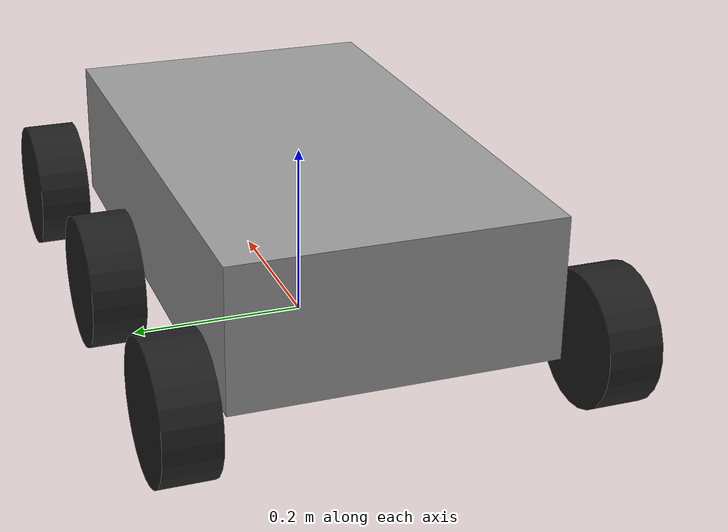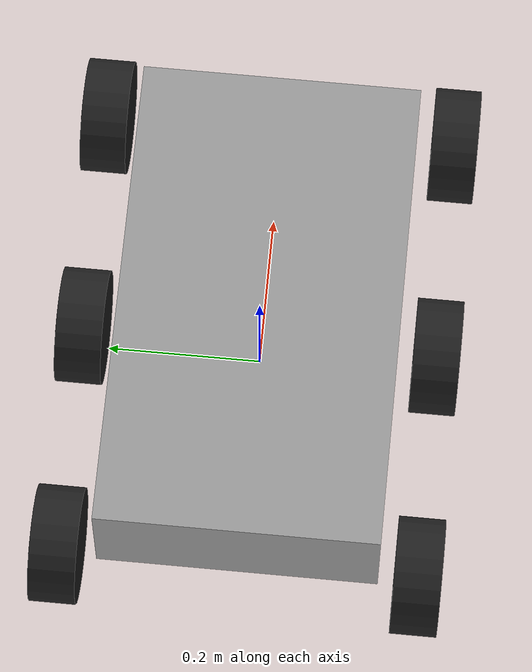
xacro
<?xml version="1.0"?>
<robot xmlns:xacro="http://www.ros.org/wiki/xacro">

  <!-- Geometry constants mirrored from rover_base/config/base_topology.yaml -
       keep the two in sync if either changes. -->
  <xacro:property name="wheelbase_front" value="0.30"/>
  <xacro:property name="wheelbase_rear" value="0.30"/>
  <xacro:property name="track" value="0.46"/>
  <xacro:property name="wheel_radius" value="0.075"/>
  <xacro:property name="wheel_width" value="0.06"/>
  <xacro:property name="wheel_mass" value="1.1"/>

  <xacro:property name="chassis_length" value="0.62"/>
  <xacro:property name="chassis_width" value="0.36"/>
  <xacro:property name="chassis_height" value="0.16"/>
  <xacro:property name="chassis_mass" value="14.0"/>
  <xacro:property name="chassis_ground_clearance" value="0.14"/>

  <link name="base_link"/>

  <joint name="base_to_chassis" type="fixed">
    <parent link="base_link"/>
    <child link="chassis_link"/>
    <origin xyz="0 0 ${chassis_ground_clearance}" rpy="0 0 0"/>
  </joint>

  <link name="chassis_link">
    <visual>
      <geometry>
        <box size="${chassis_length} ${chassis_width} ${chassis_height}"/>
      </geometry>
      <material name="chassis_grey"/>
    </visual>
    <collision>
      <geometry>
        <box size="${chassis_length} ${chassis_width} ${chassis_height}"/>
      </geometry>
    </collision>
    <inertial>
      <mass value="${chassis_mass}"/>
      <xacro:box_inertia mass="${chassis_mass}" x="${chassis_length}" y="${chassis_width}" z="${chassis_height}"/>
    </inertial>
  </link>

  <xacro:macro name="steer_wheel" params="name x y">
    <link name="${name}_steer_link">
      <visual>
        <geometry><cylinder radius="0.02" length="0.06"/></geometry>
        <material name="sensor_dark"/>
      </visual>
      <inertial>
        <mass value="0.3"/>
        <xacro:cylinder_inertia mass="0.3" radius="0.02" length="0.06"/>
      </inertial>
    </link>

    <joint name="${name}_steer_joint" type="revolute">
      <parent link="chassis_link"/>
      <child link="${name}_steer_link"/>
      <origin xyz="${x} ${y} ${-chassis_ground_clearance + wheel_radius}" rpy="0 0 0"/>
      <axis xyz="0 0 1"/>
      <limit lower="${-60.0 * 3.14159265/180.0}" upper="${60.0 * 3.14159265/180.0}" effort="5.0" velocity="3.0"/>
    </joint>

    <xacro:wheel_link_and_joint name="${name}" parent="${name}_steer_link" xyz="0 0 0"/>
  </xacro:macro>

  <!-- A fixed-orientation (non-steering) middle wheel. -->
  <xacro:macro name="fixed_wheel" params="name x y">
    <xacro:wheel_link_and_joint name="${name}" parent="chassis_link" xyz="${x} ${y} ${-chassis_ground_clearance + wheel_radius}"/>
  </xacro:macro>

  <xacro:macro name="wheel_link_and_joint" params="name parent xyz">
    <link name="${name}_wheel_link">
      <visual>
        <origin xyz="0 0 0" rpy="${3.14159265/2.0} 0 0"/>
        <geometry><cylinder radius="${wheel_radius}" length="${wheel_width}"/></geometry>
        <material name="wheel_black"/>
      </visual>
      <collision>
        <origin xyz="0 0 0" rpy="${3.14159265/2.0} 0 0"/>
        <geometry><cylinder radius="${wheel_radius}" length="${wheel_width}"/></geometry>
      </collision>
      <inertial>
        <mass value="${wheel_mass}"/>
        <origin xyz="0 0 0" rpy="${3.14159265/2.0} 0 0"/>
        <xacro:cylinder_inertia mass="${wheel_mass}" radius="${wheel_radius}" length="${wheel_width}"/>
      </inertial>
    </link>

    <joint name="${name}_drive_joint" type="continuous">
      <parent link="${parent}"/>
      <child link="${name}_wheel_link"/>
      <origin xyz="${xyz}" rpy="0 0 0"/>
      <axis xyz="0 1 0"/>
    </joint>
  </xacro:macro>

  <xacro:steer_wheel name="front_left" x="${wheelbase_front}" y="${track/2.0}"/>
  <xacro:steer_wheel name="front_right" x="${wheelbase_front}" y="${-track/2.0}"/>
  <xacro:fixed_wheel name="mid_left" x="0.0" y="${track/2.0}"/>
  <xacro:fixed_wheel name="mid_right" x="0.0" y="${-track/2.0}"/>
  <xacro:steer_wheel name="rear_left" x="${-wheelbase_rear}" y="${track/2.0}"/>
  <xacro:steer_wheel name="rear_right" x="${-wheelbase_rear}" y="${-track/2.0}"/>

</robot>
